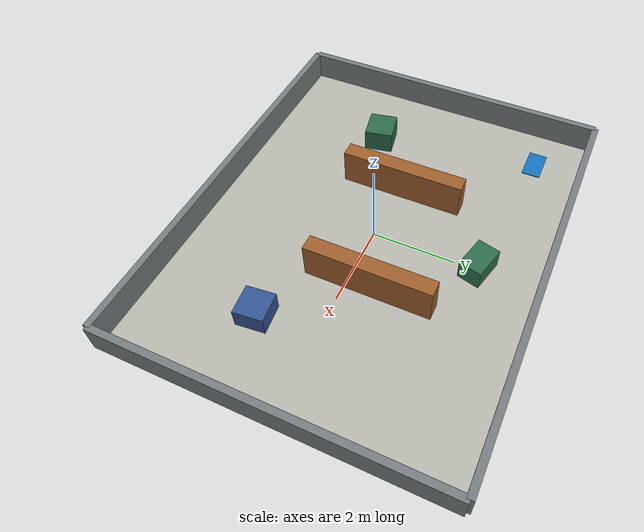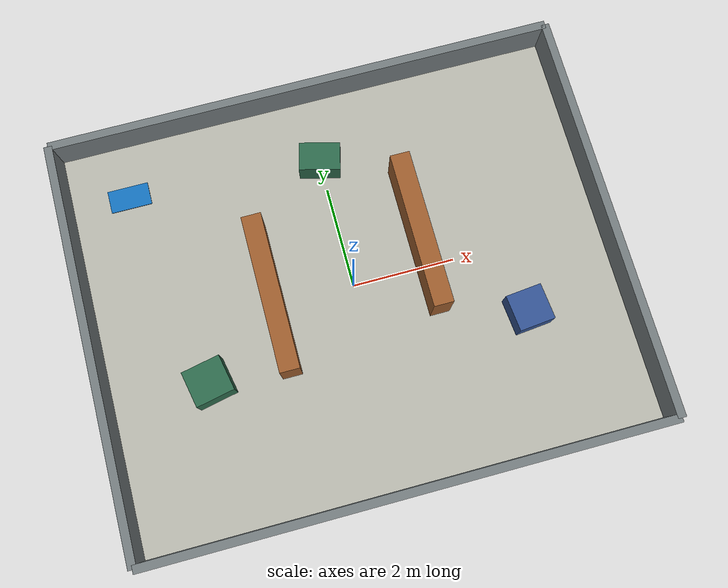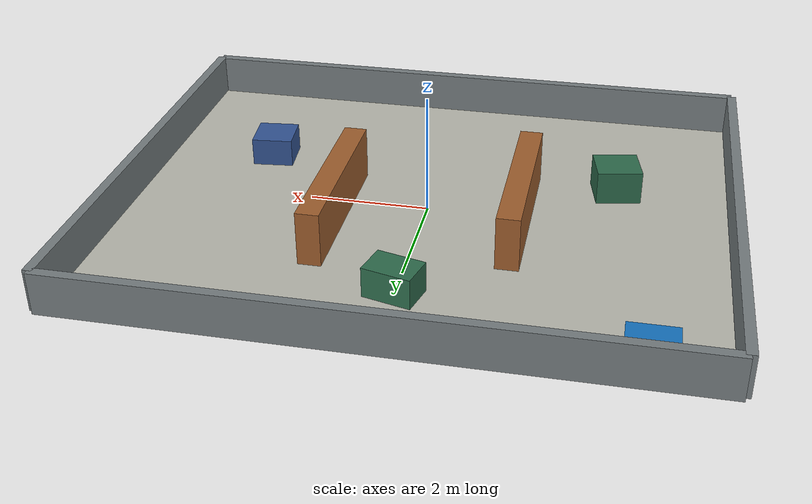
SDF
<?xml version="1.0"?>
<sdf version="1.10">
  <world name="warehouse_world">
    <plugin filename="gz-sim-physics-system" name="gz::sim::systems::Physics"/>
    <plugin filename="gz-sim-user-commands-system" name="gz::sim::systems::UserCommands"/>
    <plugin filename="gz-sim-scene-broadcaster-system" name="gz::sim::systems::SceneBroadcaster"/>
    <plugin filename="gz-sim-sensors-system" name="gz::sim::systems::Sensors">
      <render_engine>ogre2</render_engine>
    </plugin>

    <gravity>0 0 -9.81</gravity>

    <light name="main_light" type="directional">
      <pose>-3 -4 8 0.6 0.3 0.4</pose>
      <diffuse>0.9 0.9 0.85 1</diffuse>
      <specular>0.2 0.2 0.2 1</specular>
      <direction>0.4 0.6 -1</direction>
    </light>

    <model name="warehouse_floor">
      <static>true</static>
      <link name="floor_link">
        <pose>0 0 -0.025 0 0 0</pose>
        <collision name="floor_collision">
          <geometry>
            <box>
              <size>10 8 0.05</size>
            </box>
          </geometry>
        </collision>
        <visual name="floor_visual">
          <geometry>
            <box>
              <size>10 8 0.05</size>
            </box>
          </geometry>
          <material>
            <ambient>0.72 0.72 0.68 1</ambient>
            <diffuse>0.72 0.72 0.68 1</diffuse>
          </material>
        </visual>
      </link>
    </model>

    <model name="north_wall">
      <static>true</static>
      <pose>0 4 0.35 0 0 0</pose>
      <link name="wall_link">
        <collision name="collision">
          <geometry><box><size>10 0.16 0.70</size></box></geometry>
        </collision>
        <visual name="visual">
          <geometry><box><size>10 0.16 0.70</size></box></geometry>
          <material><ambient>0.46 0.49 0.50 1</ambient><diffuse>0.46 0.49 0.50 1</diffuse></material>
        </visual>
      </link>
    </model>

    <model name="south_wall">
      <static>true</static>
      <pose>0 -4 0.35 0 0 0</pose>
      <link name="wall_link">
        <collision name="collision">
          <geometry><box><size>10 0.16 0.70</size></box></geometry>
        </collision>
        <visual name="visual">
          <geometry><box><size>10 0.16 0.70</size></box></geometry>
          <material><ambient>0.46 0.49 0.50 1</ambient><diffuse>0.46 0.49 0.50 1</diffuse></material>
        </visual>
      </link>
    </model>

    <model name="east_wall">
      <static>true</static>
      <pose>5 0 0.35 0 0 0</pose>
      <link name="wall_link">
        <collision name="collision">
          <geometry><box><size>0.16 8 0.70</size></box></geometry>
        </collision>
        <visual name="visual">
          <geometry><box><size>0.16 8 0.70</size></box></geometry>
          <material><ambient>0.46 0.49 0.50 1</ambient><diffuse>0.46 0.49 0.50 1</diffuse></material>
        </visual>
      </link>
    </model>

    <model name="west_wall">
      <static>true</static>
      <pose>-5 0 0.35 0 0 0</pose>
      <link name="wall_link">
        <collision name="collision">
          <geometry><box><size>0.16 8 0.70</size></box></geometry>
        </collision>
        <visual name="visual">
          <geometry><box><size>0.16 8 0.70</size></box></geometry>
          <material><ambient>0.46 0.49 0.50 1</ambient><diffuse>0.46 0.49 0.50 1</diffuse></material>
        </visual>
      </link>
    </model>

    <model name="shelf_left">
      <static>true</static>
      <pose>-1.55 0.10 0.45 0 0 0</pose>
      <link name="shelf_link">
        <collision name="collision">
          <geometry><box><size>0.38 3.0 0.9</size></box></geometry>
        </collision>
        <visual name="visual">
          <geometry><box><size>0.38 3.0 0.9</size></box></geometry>
          <material><ambient>0.62 0.37 0.18 1</ambient><diffuse>0.62 0.37 0.18 1</diffuse></material>
        </visual>
      </link>
    </model>

    <model name="shelf_right">
      <static>true</static>
      <pose>1.45 0.55 0.45 0 0 0</pose>
      <link name="shelf_link">
        <collision name="collision">
          <geometry><box><size>0.38 3.0 0.9</size></box></geometry>
        </collision>
        <visual name="visual">
          <geometry><box><size>0.38 3.0 0.9</size></box></geometry>
          <material><ambient>0.62 0.37 0.18 1</ambient><diffuse>0.62 0.37 0.18 1</diffuse></material>
        </visual>
      </link>
    </model>

    <model name="crate_stack_loading">
      <static>true</static>
      <pose>-3.05 -1.15 0.28 0 0 0.2</pose>
      <link name="crate_link">
        <collision name="collision">
          <geometry><box><size>0.75 0.70 0.56</size></box></geometry>
        </collision>
        <visual name="visual">
          <geometry><box><size>0.75 0.70 0.56</size></box></geometry>
          <material><ambient>0.18 0.42 0.30 1</ambient><diffuse>0.18 0.42 0.30 1</diffuse></material>
        </visual>
      </link>
    </model>

    <model name="crate_stack_center">
      <static>true</static>
      <pose>0.0 2.55 0.25 0 0 -0.25</pose>
      <link name="crate_link">
        <collision name="collision">
          <geometry><box><size>0.80 0.55 0.50</size></box></geometry>
        </collision>
        <visual name="visual">
          <geometry><box><size>0.80 0.55 0.50</size></box></geometry>
          <material><ambient>0.18 0.42 0.30 1</ambient><diffuse>0.18 0.42 0.30 1</diffuse></material>
        </visual>
      </link>
    </model>

    <model name="inspection_box">
      <static>true</static>
      <pose>3.05 -1.35 0.24 0 0 0.1</pose>
      <link name="box_link">
        <collision name="collision">
          <geometry><box><size>0.70 0.70 0.48</size></box></geometry>
        </collision>
        <visual name="visual">
          <geometry><box><size>0.70 0.70 0.48</size></box></geometry>
          <material><ambient>0.20 0.33 0.58 1</ambient><diffuse>0.20 0.33 0.58 1</diffuse></material>
        </visual>
      </link>
    </model>

    <model name="charging_marker">
      <static>true</static>
      <pose>-3.8 2.85 0.02 0 0 0</pose>
      <link name="marker_link">
        <visual name="visual">
          <geometry><box><size>0.8 0.45 0.02</size></box></geometry>
          <material><ambient>0.08 0.45 0.75 1</ambient><diffuse>0.08 0.45 0.75 1</diffuse></material>
        </visual>
      </link>
    </model>
  </world>
</sdf>
